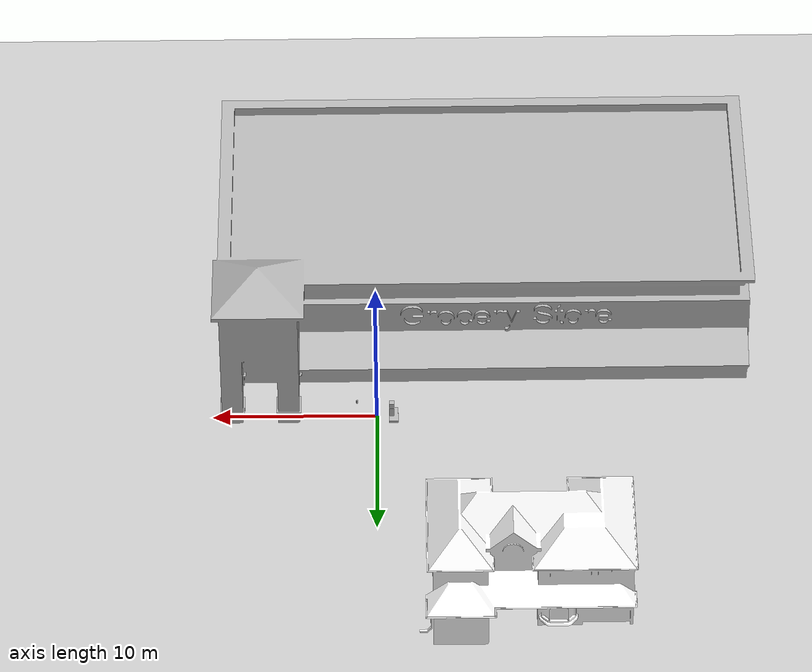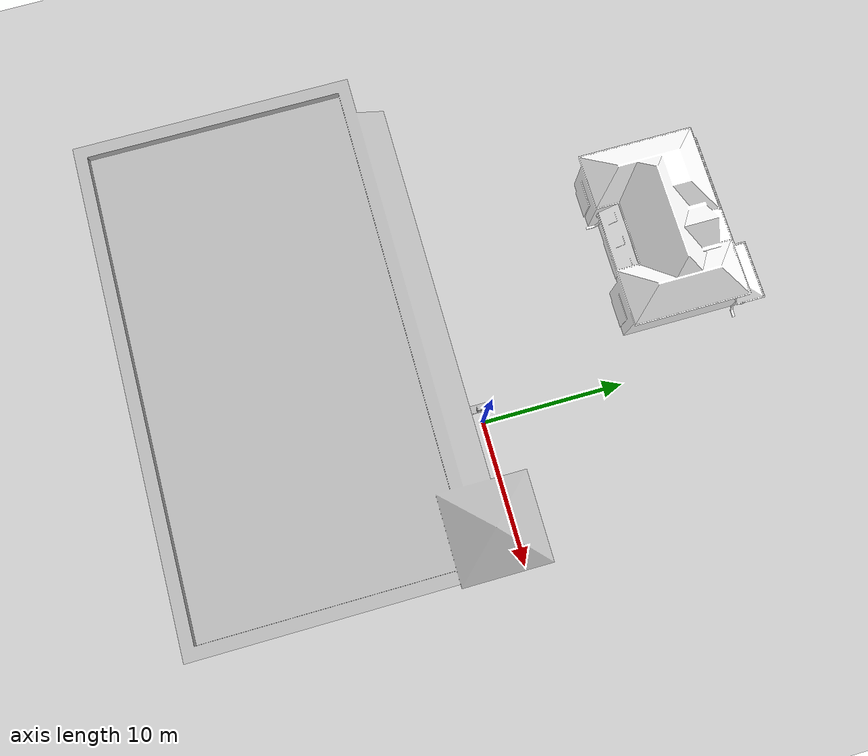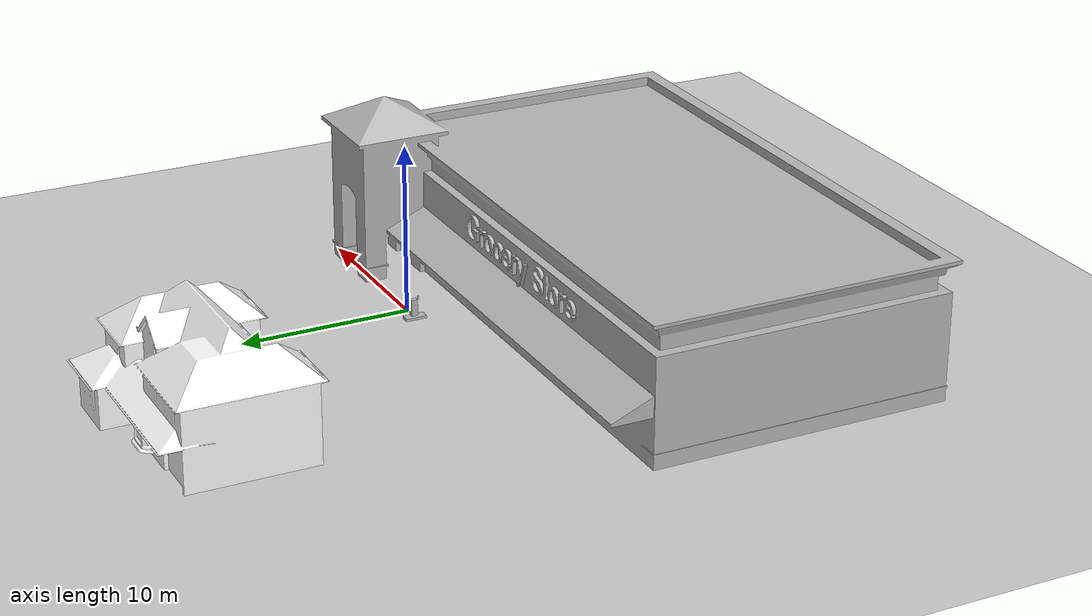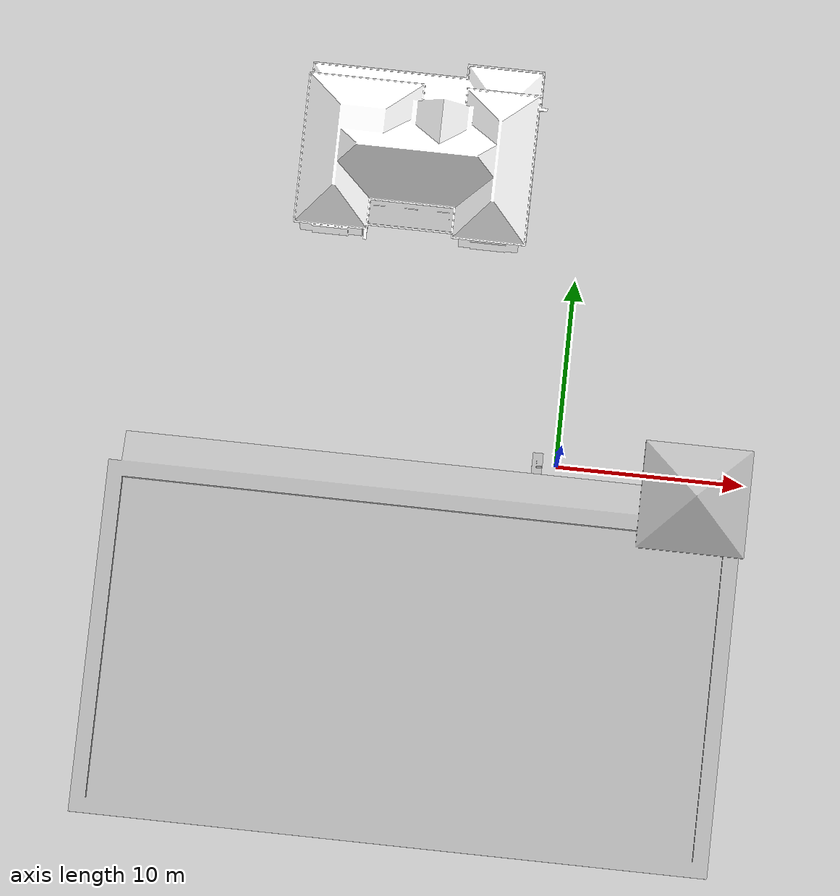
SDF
<sdf version="1.6">
 <world name="default">
  <model name="ground_plane">
   <static>1</static>
   <link name="link">
    <collision name="collision">
     <geometry><plane><normal>0 0 1</normal><size>100 100</size></plane></geometry>
     <surface><friction><ode><mu>100</mu><mu2>50</mu2></ode></friction></surface>
    </collision>
    <visual name="visual">
     <cast_shadows>0</cast_shadows>
     <geometry><plane><normal>0 0 1</normal><size>100 100</size></plane></geometry>
     <material>
      <script><uri>file://media/materials/scripts/gazebo.material</uri><name>Gazebo/Grey</name></script>
     </material>
    </visual>
   </link>
  </model>
  <light name="sun" type="directional">
   <pose>0 0 10 0 -0 0</pose>
   <diffuse>0.8 0.8 0.8 1</diffuse>
   <specular>0.2 0.2 0.2 1</specular>
   <attenuation>
    <range>1000</range>
    <constant>0.9</constant>
    <linear>0.01</linear>
    <quadratic>0.001</quadratic>
   </attenuation>
   <direction>-0.5 0.1 -0.9</direction>
  </light>
  <scene><ambient>0 0 0 1</ambient><shadows>0</shadows><background>0.7 0.7 0.7 1</background></scene>
  <model name="house">
   <static>1</static>
   <link name="link">
    <collision name="collision">
     <geometry><mesh><uri>model://house_2/meshes/house_2.dae</uri><scale>1.5 1.5 1.5</scale></mesh></geometry>
    </collision>
    <visual name="visual">
     <geometry><mesh><uri>model://house_2/meshes/house_2.dae</uri><scale>1.5 1.5 1.5</scale></mesh></geometry>
     <material>
      <script>
       <uri>model://house_2/materials/scripts</uri>
       <uri>model://house_2/materials/textures</uri>
       <uri>model://house_1/materials/textures</uri>
       <name>House_2/Diffuse</name>
      </script>
      <shader type="normal_map_tangent_space">
       <normal_map>model://house_1/materials/textures/House_1_Normal.png</normal_map>
      </shader>
     </material>
    </visual>
   </link>
   <pose>-10 15 0 0 -0 0</pose>
  </model>
  <model name="origin">
   <link name="link">
    <inertial><mass>1</mass></inertial>
    <collision name="collision">
     <geometry>
      <mesh>
       <uri>model://aws_robomaker_residential_Rangehood_01/meshes/aws_Rangehood_01_collision.DAE</uri>
       <scale>1 1 1</scale>
      </mesh>
     </geometry>
    </collision>
    <visual name="visual">
     <geometry>
      <mesh><uri>model://aws_robomaker_residential_Rangehood_01/meshes/aws_Rangehood_01_visual.DAE</uri></mesh>
     </geometry>
     <meta><layer>2</layer></meta>
    </visual>
   </link>
   <static>1</static>
   <pose>-1 0 0 0 -0 0</pose>
  </model>
  <model name="grocery_store">
   <static>1</static>
   <link name="link">
    <collision name="collision">
     <pose>0 0 4.04605 0 -0 0</pose>
     <geometry><box><size>32.1985 17.5425 8.09209</size></box></geometry>
    </collision>
    <visual name="visual">
     <pose>0 -1.96155 0 0 -0 0</pose>
     <geometry><mesh><uri>model://grocery_store/meshes/grocery_store.dae</uri></mesh></geometry>
    </visual>
   </link>
   <pose>-6.7 -12 0 0 -0 0</pose>
  </model>
  <gravity>0 0 -9.8</gravity>
  <magnetic_field>6e-06 2.3e-05 -4.2e-05</magnetic_field>
  <atmosphere type="adiabatic"/>
  <physics name="default_physics" default="0" type="ode">
   <max_step_size>0.001</max_step_size>
   <real_time_factor>1</real_time_factor>
   <real_time_update_rate>1000</real_time_update_rate>
  </physics>
  <audio><device>default</device></audio>
  <spherical_coordinates>
   <surface_model>EARTH_WGS84</surface_model>
   <latitude_deg>0</latitude_deg>
   <longitude_deg>0</longitude_deg>
   <elevation>0</elevation>
   <heading_deg>0</heading_deg>
  </spherical_coordinates>
  <model name="beer">
   <link name="link">
    <pose>0 0 0.115 0 -0 0</pose>
    <inertial>
     <mass>0.39</mass>
     <inertia><ixx>0.00058</ixx><ixy>0</ixy><ixz>0</ixz><iyy>0.00058</iyy><iyz>0</iyz><izz>0.00019</izz></inertia>
    </inertial>
    <collision name="collision">
     <geometry><cylinder><radius>0.055</radius><length>0.23</length></cylinder></geometry>
    </collision>
    <visual name="visual">
     <geometry><cylinder><radius>0.055</radius><length>0.23</length></cylinder></geometry>
     <material>
      <script>
       <uri>model://beer/materials/scripts</uri>
       <uri>model://beer/materials/textures</uri>
       <name>Beer/Diffuse</name>
      </script>
     </material>
    </visual>
   </link>
   <pose>1.21399 -1.20937 -2e-06 1e-06 0 -1.7e-05</pose>
  </model>
 </world>
</sdf>
